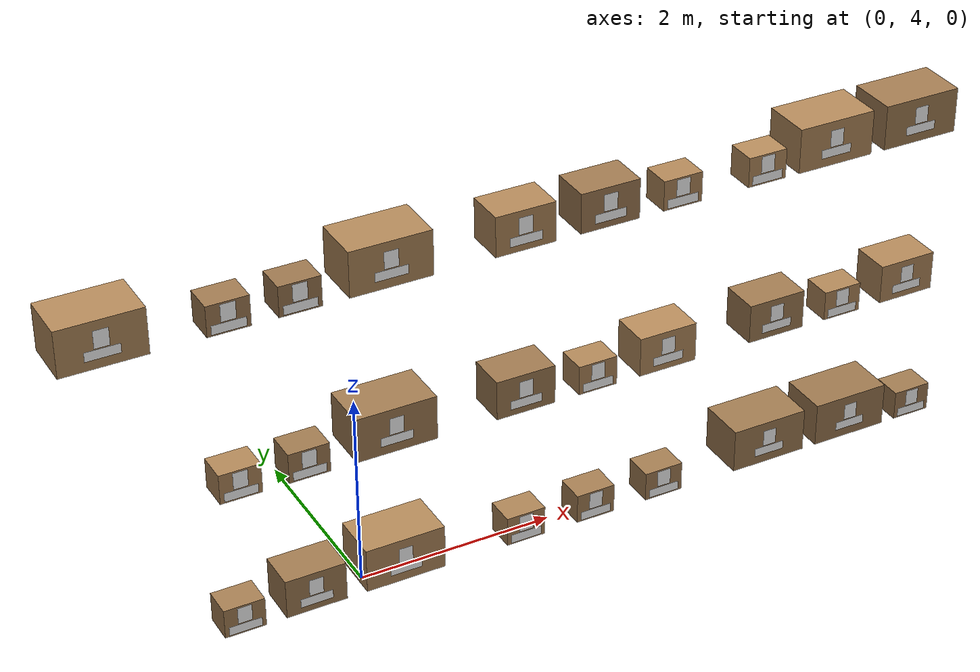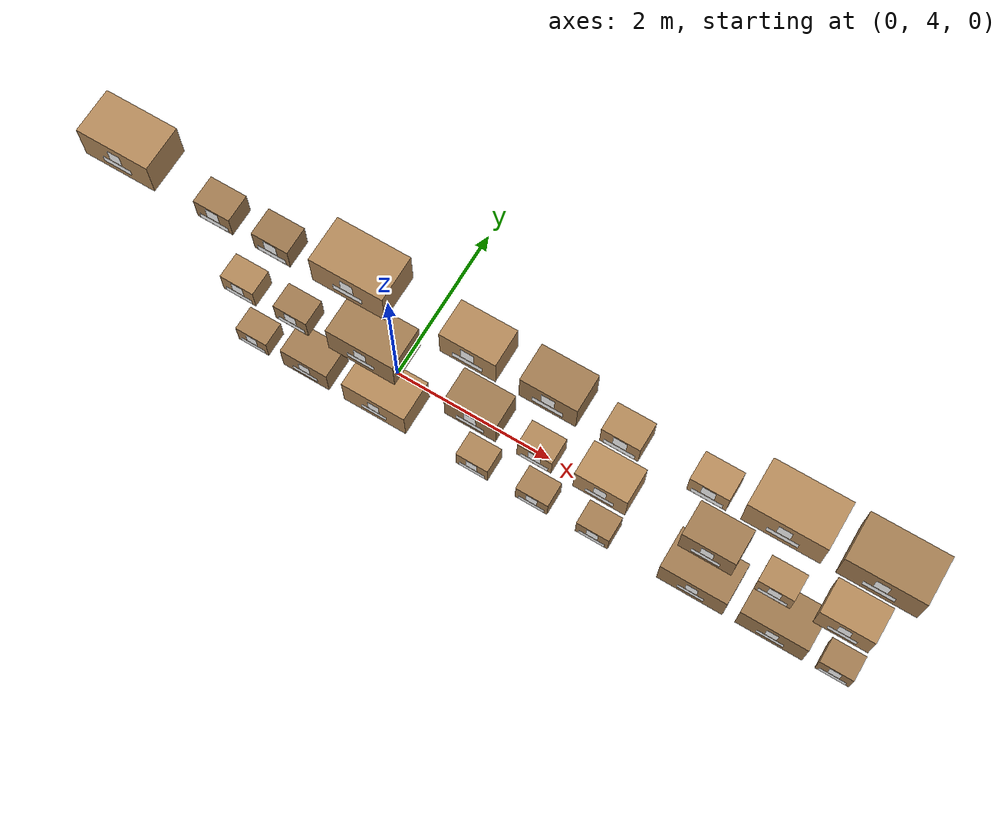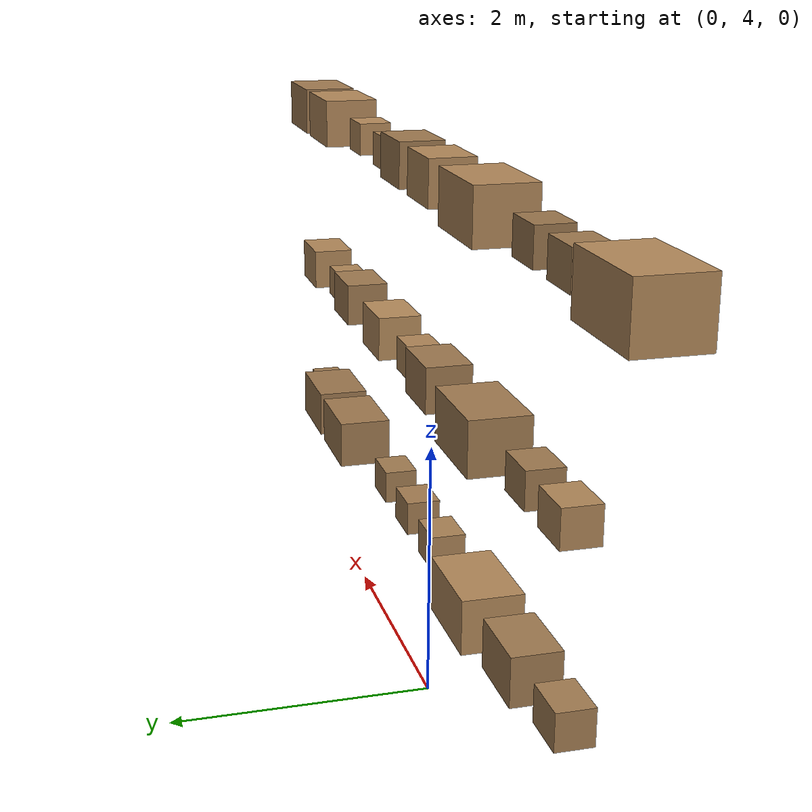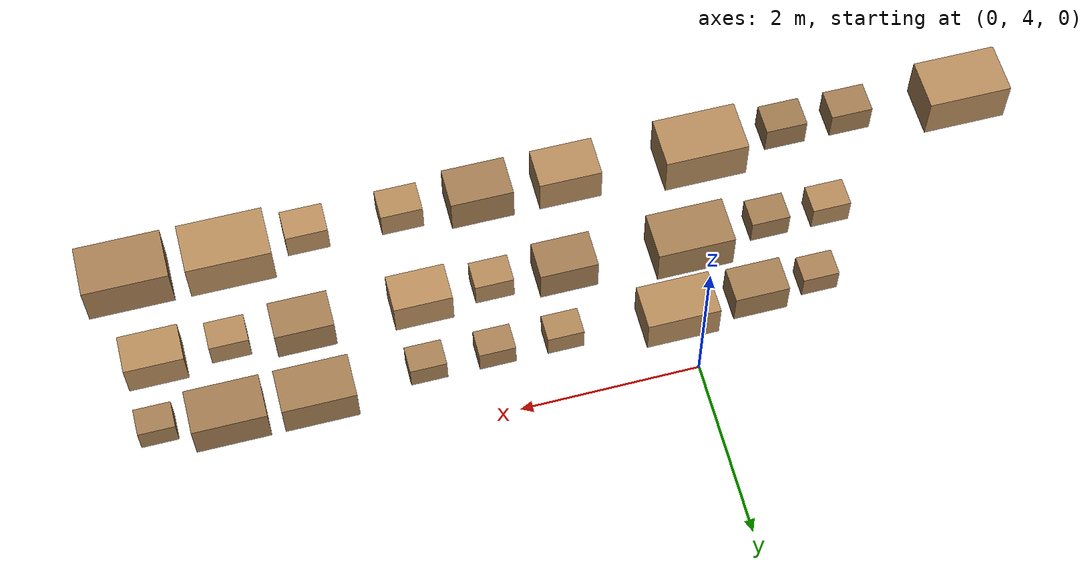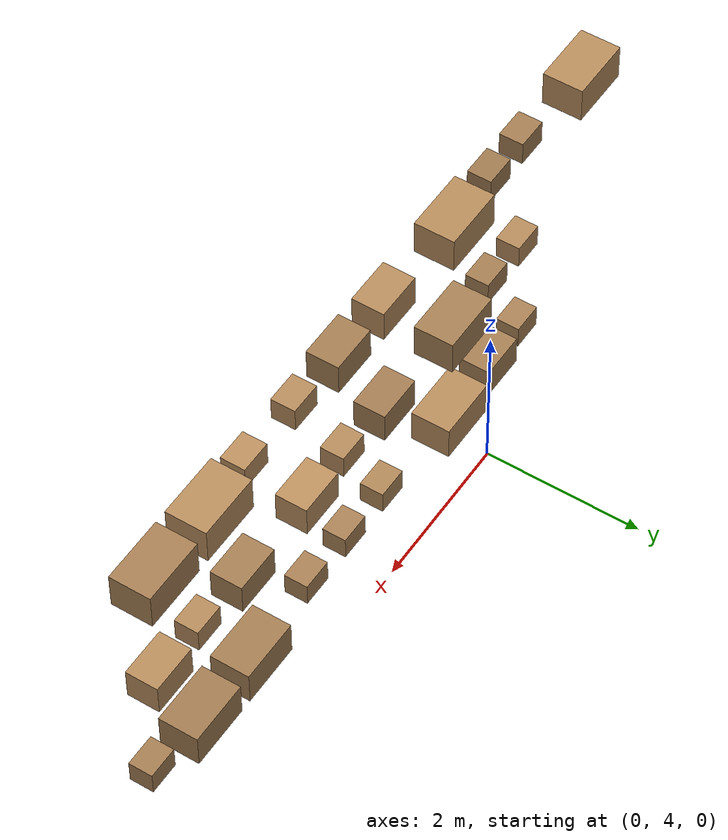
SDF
<sdf version="1.9">
 <world name="warehouse">
  <model name="inventory">
   <static>true</static>
   <link name="box_D_03_3_2">
    <visual name="body">
     <pose>-2.5 3.57 3.775 0 0 0</pose>
     <geometry><box><size>0.8 0.5 0.45</size></box></geometry>
     <material>
      <ambient>0.353038 0.26997 0.176519 1</ambient>
      <diffuse>0.706075 0.53994 0.353038 1</diffuse>
      <specular>0.05 0.05 0.05 1</specular>
      <pbr><metal><metalness>0.0</metalness><roughness>0.9</roughness></metal></pbr>
     </material>
    </visual>
    <collision name="body_c">
     <pose>-2.5 3.57 3.775 0 0 0</pose>
     <geometry><box><size>0.8 0.5 0.45</size></box></geometry>
    </collision>
    <visual name="label">
     <pose>-2.5 3.316 3.825 1.5708 0 0</pose>
     <geometry>
      <mesh><uri>model://warehouse_assets/meshes/label_quad.obj</uri><scale>0.14 0.17 1</scale></mesh>
     </geometry>
     <material>
      <ambient>1 1 1 1</ambient>
      <diffuse>1 1 1 1</diffuse>
      <specular>0 0 0 1</specular>
      <pbr>
       <metal>
        <albedo_map>model://warehouse_assets/materials/textures/box_D0332.png</albedo_map>
        <metalness>0.0</metalness>
        <roughness>1.0</roughness>
       </metal>
      </pbr>
     </material>
    </visual>
    <visual name="placard">
     <pose>-2.5 3.316 3.685 1.5708 0 0</pose>
     <geometry>
      <mesh><uri>model://warehouse_assets/meshes/label_quad.obj</uri><scale>0.32 0.09 1</scale></mesh>
     </geometry>
     <material>
      <ambient>1 1 1 1</ambient>
      <diffuse>1 1 1 1</diffuse>
      <specular>0 0 0 1</specular>
      <pbr>
       <metal>
        <albedo_map>model://warehouse_assets/materials/textures/placard_D0332.png</albedo_map>
        <metalness>0.0</metalness>
        <roughness>1.0</roughness>
       </metal>
      </pbr>
     </material>
    </visual>
   </link>
   <link name="box_D_04_1_0">
    <visual name="body">
     <pose>-1.45 3.47 0.55 0 0 0</pose>
     <geometry><box><size>0.4 0.3 0.3</size></box></geometry>
     <material>
      <ambient>0.323296 0.247226 0.161648 1</ambient>
      <diffuse>0.646591 0.494452 0.323296 1</diffuse>
      <specular>0.05 0.05 0.05 1</specular>
      <pbr><metal><metalness>0.0</metalness><roughness>0.9</roughness></metal></pbr>
     </material>
    </visual>
    <collision name="body_c">
     <pose>-1.45 3.47 0.55 0 0 0</pose>
     <geometry><box><size>0.4 0.3 0.3</size></box></geometry>
    </collision>
    <visual name="label">
     <pose>-1.45 3.316 0.6 1.5708 0 0</pose>
     <geometry>
      <mesh><uri>model://warehouse_assets/meshes/label_quad.obj</uri><scale>0.14 0.17 1</scale></mesh>
     </geometry>
     <material>
      <ambient>1 1 1 1</ambient>
      <diffuse>1 1 1 1</diffuse>
      <specular>0 0 0 1</specular>
      <pbr>
       <metal>
        <albedo_map>model://warehouse_assets/materials/textures/box_D0410.png</albedo_map>
        <metalness>0.0</metalness>
        <roughness>1.0</roughness>
       </metal>
      </pbr>
     </material>
    </visual>
    <visual name="placard">
     <pose>-1.45 3.316 0.46 1.5708 0 0</pose>
     <geometry>
      <mesh><uri>model://warehouse_assets/meshes/label_quad.obj</uri><scale>0.32 0.09 1</scale></mesh>
     </geometry>
     <material>
      <ambient>1 1 1 1</ambient>
      <diffuse>1 1 1 1</diffuse>
      <specular>0 0 0 1</specular>
      <pbr>
       <metal>
        <albedo_map>model://warehouse_assets/materials/textures/placard_D0410.png</albedo_map>
        <metalness>0.0</metalness>
        <roughness>1.0</roughness>
       </metal>
      </pbr>
     </material>
    </visual>
   </link>
   <link name="box_D_04_1_1">
    <visual name="body">
     <pose>-0.75 3.52 0.6 0 0 0</pose>
     <geometry><box><size>0.6 0.4 0.4</size></box></geometry>
     <material>
      <ambient>0.314243 0.240304 0.157122 1</ambient>
      <diffuse>0.628486 0.480607 0.314243 1</diffuse>
      <specular>0.05 0.05 0.05 1</specular>
      <pbr><metal><metalness>0.0</metalness><roughness>0.9</roughness></metal></pbr>
     </material>
    </visual>
    <collision name="body_c">
     <pose>-0.75 3.52 0.6 0 0 0</pose>
     <geometry><box><size>0.6 0.4 0.4</size></box></geometry>
    </collision>
    <visual name="label">
     <pose>-0.75 3.316 0.65 1.5708 0 0</pose>
     <geometry>
      <mesh><uri>model://warehouse_assets/meshes/label_quad.obj</uri><scale>0.14 0.17 1</scale></mesh>
     </geometry>
     <material>
      <ambient>1 1 1 1</ambient>
      <diffuse>1 1 1 1</diffuse>
      <specular>0 0 0 1</specular>
      <pbr>
       <metal>
        <albedo_map>model://warehouse_assets/materials/textures/box_D0411.png</albedo_map>
        <metalness>0.0</metalness>
        <roughness>1.0</roughness>
       </metal>
      </pbr>
     </material>
    </visual>
    <visual name="placard">
     <pose>-0.75 3.316 0.51 1.5708 0 0</pose>
     <geometry>
      <mesh><uri>model://warehouse_assets/meshes/label_quad.obj</uri><scale>0.32 0.09 1</scale></mesh>
     </geometry>
     <material>
      <ambient>1 1 1 1</ambient>
      <diffuse>1 1 1 1</diffuse>
      <specular>0 0 0 1</specular>
      <pbr>
       <metal>
        <albedo_map>model://warehouse_assets/materials/textures/placard_D0411.png</albedo_map>
        <metalness>0.0</metalness>
        <roughness>1.0</roughness>
       </metal>
      </pbr>
     </material>
    </visual>
   </link>
   <link name="box_D_04_1_2">
    <visual name="body">
     <pose>0.15 3.57 0.625 0 0 0</pose>
     <geometry><box><size>0.8 0.5 0.45</size></box></geometry>
     <material>
      <ambient>0.351765 0.268997 0.175882 1</ambient>
      <diffuse>0.70353 0.537993 0.351765 1</diffuse>
      <specular>0.05 0.05 0.05 1</specular>
      <pbr><metal><metalness>0.0</metalness><roughness>0.9</roughness></metal></pbr>
     </material>
    </visual>
    <collision name="body_c">
     <pose>0.15 3.57 0.625 0 0 0</pose>
     <geometry><box><size>0.8 0.5 0.45</size></box></geometry>
    </collision>
    <visual name="label">
     <pose>0.15 3.316 0.675 1.5708 0 0</pose>
     <geometry>
      <mesh><uri>model://warehouse_assets/meshes/label_quad.obj</uri><scale>0.14 0.17 1</scale></mesh>
     </geometry>
     <material>
      <ambient>1 1 1 1</ambient>
      <diffuse>1 1 1 1</diffuse>
      <specular>0 0 0 1</specular>
      <pbr>
       <metal>
        <albedo_map>model://warehouse_assets/materials/textures/box_D0412.png</albedo_map>
        <metalness>0.0</metalness>
        <roughness>1.0</roughness>
       </metal>
      </pbr>
     </material>
    </visual>
    <visual name="placard">
     <pose>0.15 3.316 0.535 1.5708 0 0</pose>
     <geometry>
      <mesh><uri>model://warehouse_assets/meshes/label_quad.obj</uri><scale>0.32 0.09 1</scale></mesh>
     </geometry>
     <material>
      <ambient>1 1 1 1</ambient>
      <diffuse>1 1 1 1</diffuse>
      <specular>0 0 0 1</specular>
      <pbr>
       <metal>
        <albedo_map>model://warehouse_assets/materials/textures/placard_D0412.png</albedo_map>
        <metalness>0.0</metalness>
        <roughness>1.0</roughness>
       </metal>
      </pbr>
     </material>
    </visual>
   </link>
   <link name="box_D_04_2_0">
    <visual name="body">
     <pose>-1.4 3.47 2 0 0 0</pose>
     <geometry><box><size>0.4 0.3 0.3</size></box></geometry>
     <material>
      <ambient>0.346204 0.264744 0.173102 1</ambient>
      <diffuse>0.692409 0.529489 0.346204 1</diffuse>
      <specular>0.05 0.05 0.05 1</specular>
      <pbr><metal><metalness>0.0</metalness><roughness>0.9</roughness></metal></pbr>
     </material>
    </visual>
    <collision name="body_c">
     <pose>-1.4 3.47 2 0 0 0</pose>
     <geometry><box><size>0.4 0.3 0.3</size></box></geometry>
    </collision>
    <visual name="label">
     <pose>-1.4 3.316 2.05 1.5708 0 0</pose>
     <geometry>
      <mesh><uri>model://warehouse_assets/meshes/label_quad.obj</uri><scale>0.14 0.17 1</scale></mesh>
     </geometry>
     <material>
      <ambient>1 1 1 1</ambient>
      <diffuse>1 1 1 1</diffuse>
      <specular>0 0 0 1</specular>
      <pbr>
       <metal>
        <albedo_map>model://warehouse_assets/materials/textures/box_D0420.png</albedo_map>
        <metalness>0.0</metalness>
        <roughness>1.0</roughness>
       </metal>
      </pbr>
     </material>
    </visual>
    <visual name="placard">
     <pose>-1.4 3.316 1.91 1.5708 0 0</pose>
     <geometry>
      <mesh><uri>model://warehouse_assets/meshes/label_quad.obj</uri><scale>0.32 0.09 1</scale></mesh>
     </geometry>
     <material>
      <ambient>1 1 1 1</ambient>
      <diffuse>1 1 1 1</diffuse>
      <specular>0 0 0 1</specular>
      <pbr>
       <metal>
        <albedo_map>model://warehouse_assets/materials/textures/placard_D0420.png</albedo_map>
        <metalness>0.0</metalness>
        <roughness>1.0</roughness>
       </metal>
      </pbr>
     </material>
    </visual>
   </link>
   <link name="box_D_04_2_1">
    <visual name="body">
     <pose>-0.75 3.47 2 0 0 0</pose>
     <geometry><box><size>0.4 0.3 0.3</size></box></geometry>
     <material>
      <ambient>0.311661 0.238329 0.155831 1</ambient>
      <diffuse>0.623323 0.476658 0.311661 1</diffuse>
      <specular>0.05 0.05 0.05 1</specular>
      <pbr><metal><metalness>0.0</metalness><roughness>0.9</roughness></metal></pbr>
     </material>
    </visual>
    <collision name="body_c">
     <pose>-0.75 3.47 2 0 0 0</pose>
     <geometry><box><size>0.4 0.3 0.3</size></box></geometry>
    </collision>
    <visual name="label">
     <pose>-0.75 3.316 2.05 1.5708 0 0</pose>
     <geometry>
      <mesh><uri>model://warehouse_assets/meshes/label_quad.obj</uri><scale>0.14 0.17 1</scale></mesh>
     </geometry>
     <material>
      <ambient>1 1 1 1</ambient>
      <diffuse>1 1 1 1</diffuse>
      <specular>0 0 0 1</specular>
      <pbr>
       <metal>
        <albedo_map>model://warehouse_assets/materials/textures/box_D0421.png</albedo_map>
        <metalness>0.0</metalness>
        <roughness>1.0</roughness>
       </metal>
      </pbr>
     </material>
    </visual>
    <visual name="placard">
     <pose>-0.75 3.316 1.91 1.5708 0 0</pose>
     <geometry>
      <mesh><uri>model://warehouse_assets/meshes/label_quad.obj</uri><scale>0.32 0.09 1</scale></mesh>
     </geometry>
     <material>
      <ambient>1 1 1 1</ambient>
      <diffuse>1 1 1 1</diffuse>
      <specular>0 0 0 1</specular>
      <pbr>
       <metal>
        <albedo_map>model://warehouse_assets/materials/textures/placard_D0421.png</albedo_map>
        <metalness>0.0</metalness>
        <roughness>1.0</roughness>
       </metal>
      </pbr>
     </material>
    </visual>
   </link>
   <link name="box_D_04_2_2">
    <visual name="body">
     <pose>0.1 3.57 2.075 0 0 0</pose>
     <geometry><box><size>0.8 0.5 0.45</size></box></geometry>
     <material>
      <ambient>0.317059 0.242457 0.15853 1</ambient>
      <diffuse>0.634119 0.484914 0.317059 1</diffuse>
      <specular>0.05 0.05 0.05 1</specular>
      <pbr><metal><metalness>0.0</metalness><roughness>0.9</roughness></metal></pbr>
     </material>
    </visual>
    <collision name="body_c">
     <pose>0.1 3.57 2.075 0 0 0</pose>
     <geometry><box><size>0.8 0.5 0.45</size></box></geometry>
    </collision>
    <visual name="label">
     <pose>0.1 3.316 2.125 1.5708 0 0</pose>
     <geometry>
      <mesh><uri>model://warehouse_assets/meshes/label_quad.obj</uri><scale>0.14 0.17 1</scale></mesh>
     </geometry>
     <material>
      <ambient>1 1 1 1</ambient>
      <diffuse>1 1 1 1</diffuse>
      <specular>0 0 0 1</specular>
      <pbr>
       <metal>
        <albedo_map>model://warehouse_assets/materials/textures/box_D0422.png</albedo_map>
        <metalness>0.0</metalness>
        <roughness>1.0</roughness>
       </metal>
      </pbr>
     </material>
    </visual>
    <visual name="placard">
     <pose>0.1 3.316 1.985 1.5708 0 0</pose>
     <geometry>
      <mesh><uri>model://warehouse_assets/meshes/label_quad.obj</uri><scale>0.32 0.09 1</scale></mesh>
     </geometry>
     <material>
      <ambient>1 1 1 1</ambient>
      <diffuse>1 1 1 1</diffuse>
      <specular>0 0 0 1</specular>
      <pbr>
       <metal>
        <albedo_map>model://warehouse_assets/materials/textures/placard_D0422.png</albedo_map>
        <metalness>0.0</metalness>
        <roughness>1.0</roughness>
       </metal>
      </pbr>
     </material>
    </visual>
   </link>
   <link name="box_D_04_3_0">
    <visual name="body">
     <pose>-1.4 3.47 3.7 0 0 0</pose>
     <geometry><box><size>0.4 0.3 0.3</size></box></geometry>
     <material>
      <ambient>0.313114 0.23944 0.156557 1</ambient>
      <diffuse>0.626227 0.47888 0.313114 1</diffuse>
      <specular>0.05 0.05 0.05 1</specular>
      <pbr><metal><metalness>0.0</metalness><roughness>0.9</roughness></metal></pbr>
     </material>
    </visual>
    <collision name="body_c">
     <pose>-1.4 3.47 3.7 0 0 0</pose>
     <geometry><box><size>0.4 0.3 0.3</size></box></geometry>
    </collision>
    <visual name="label">
     <pose>-1.4 3.316 3.75 1.5708 0 0</pose>
     <geometry>
      <mesh><uri>model://warehouse_assets/meshes/label_quad.obj</uri><scale>0.14 0.17 1</scale></mesh>
     </geometry>
     <material>
      <ambient>1 1 1 1</ambient>
      <diffuse>1 1 1 1</diffuse>
      <specular>0 0 0 1</specular>
      <pbr>
       <metal>
        <albedo_map>model://warehouse_assets/materials/textures/box_D0430.png</albedo_map>
        <metalness>0.0</metalness>
        <roughness>1.0</roughness>
       </metal>
      </pbr>
     </material>
    </visual>
    <visual name="placard">
     <pose>-1.4 3.316 3.61 1.5708 0 0</pose>
     <geometry>
      <mesh><uri>model://warehouse_assets/meshes/label_quad.obj</uri><scale>0.32 0.09 1</scale></mesh>
     </geometry>
     <material>
      <ambient>1 1 1 1</ambient>
      <diffuse>1 1 1 1</diffuse>
      <specular>0 0 0 1</specular>
      <pbr>
       <metal>
        <albedo_map>model://warehouse_assets/materials/textures/placard_D0430.png</albedo_map>
        <metalness>0.0</metalness>
        <roughness>1.0</roughness>
       </metal>
      </pbr>
     </material>
    </visual>
   </link>
   <link name="box_D_04_3_1">
    <visual name="body">
     <pose>-0.75 3.47 3.7 0 0 0</pose>
     <geometry><box><size>0.4 0.3 0.3</size></box></geometry>
     <material>
      <ambient>0.303092 0.231776 0.151546 1</ambient>
      <diffuse>0.606184 0.463553 0.303092 1</diffuse>
      <specular>0.05 0.05 0.05 1</specular>
      <pbr><metal><metalness>0.0</metalness><roughness>0.9</roughness></metal></pbr>
     </material>
    </visual>
    <collision name="body_c">
     <pose>-0.75 3.47 3.7 0 0 0</pose>
     <geometry><box><size>0.4 0.3 0.3</size></box></geometry>
    </collision>
    <visual name="label">
     <pose>-0.75 3.316 3.75 1.5708 0 0</pose>
     <geometry>
      <mesh><uri>model://warehouse_assets/meshes/label_quad.obj</uri><scale>0.14 0.17 1</scale></mesh>
     </geometry>
     <material>
      <ambient>1 1 1 1</ambient>
      <diffuse>1 1 1 1</diffuse>
      <specular>0 0 0 1</specular>
      <pbr>
       <metal>
        <albedo_map>model://warehouse_assets/materials/textures/box_D0431.png</albedo_map>
        <metalness>0.0</metalness>
        <roughness>1.0</roughness>
       </metal>
      </pbr>
     </material>
    </visual>
    <visual name="placard">
     <pose>-0.75 3.316 3.61 1.5708 0 0</pose>
     <geometry>
      <mesh><uri>model://warehouse_assets/meshes/label_quad.obj</uri><scale>0.32 0.09 1</scale></mesh>
     </geometry>
     <material>
      <ambient>1 1 1 1</ambient>
      <diffuse>1 1 1 1</diffuse>
      <specular>0 0 0 1</specular>
      <pbr>
       <metal>
        <albedo_map>model://warehouse_assets/materials/textures/placard_D0431.png</albedo_map>
        <metalness>0.0</metalness>
        <roughness>1.0</roughness>
       </metal>
      </pbr>
     </material>
    </visual>
   </link>
   <link name="box_D_04_3_2">
    <visual name="body">
     <pose>0.1 3.57 3.775 0 0 0</pose>
     <geometry><box><size>0.8 0.5 0.45</size></box></geometry>
     <material>
      <ambient>0.348665 0.266626 0.174333 1</ambient>
      <diffuse>0.69733 0.533253 0.348665 1</diffuse>
      <specular>0.05 0.05 0.05 1</specular>
      <pbr><metal><metalness>0.0</metalness><roughness>0.9</roughness></metal></pbr>
     </material>
    </visual>
    <collision name="body_c">
     <pose>0.1 3.57 3.775 0 0 0</pose>
     <geometry><box><size>0.8 0.5 0.45</size></box></geometry>
    </collision>
    <visual name="label">
     <pose>0.1 3.316 3.825 1.5708 0 0</pose>
     <geometry>
      <mesh><uri>model://warehouse_assets/meshes/label_quad.obj</uri><scale>0.14 0.17 1</scale></mesh>
     </geometry>
     <material>
      <ambient>1 1 1 1</ambient>
      <diffuse>1 1 1 1</diffuse>
      <specular>0 0 0 1</specular>
      <pbr>
       <metal>
        <albedo_map>model://warehouse_assets/materials/textures/box_D0432.png</albedo_map>
        <metalness>0.0</metalness>
        <roughness>1.0</roughness>
       </metal>
      </pbr>
     </material>
    </visual>
    <visual name="placard">
     <pose>0.1 3.316 3.685 1.5708 0 0</pose>
     <geometry>
      <mesh><uri>model://warehouse_assets/meshes/label_quad.obj</uri><scale>0.32 0.09 1</scale></mesh>
     </geometry>
     <material>
      <ambient>1 1 1 1</ambient>
      <diffuse>1 1 1 1</diffuse>
      <specular>0 0 0 1</specular>
      <pbr>
       <metal>
        <albedo_map>model://warehouse_assets/materials/textures/placard_D0432.png</albedo_map>
        <metalness>0.0</metalness>
        <roughness>1.0</roughness>
       </metal>
      </pbr>
     </material>
    </visual>
   </link>
   <link name="box_D_05_1_0">
    <visual name="body">
     <pose>1.4 3.47 0.55 0 0 0</pose>
     <geometry><box><size>0.4 0.3 0.3</size></box></geometry>
     <material>
      <ambient>0.337232 0.257883 0.168616 1</ambient>
      <diffuse>0.674464 0.515767 0.337232 1</diffuse>
      <specular>0.05 0.05 0.05 1</specular>
      <pbr><metal><metalness>0.0</metalness><roughness>0.9</roughness></metal></pbr>
     </material>
    </visual>
    <collision name="body_c">
     <pose>1.4 3.47 0.55 0 0 0</pose>
     <geometry><box><size>0.4 0.3 0.3</size></box></geometry>
    </collision>
    <visual name="label">
     <pose>1.4 3.316 0.6 1.5708 0 0</pose>
     <geometry>
      <mesh><uri>model://warehouse_assets/meshes/label_quad.obj</uri><scale>0.14 0.17 1</scale></mesh>
     </geometry>
     <material>
      <ambient>1 1 1 1</ambient>
      <diffuse>1 1 1 1</diffuse>
      <specular>0 0 0 1</specular>
      <pbr>
       <metal>
        <albedo_map>model://warehouse_assets/materials/textures/box_D0510.png</albedo_map>
        <metalness>0.0</metalness>
        <roughness>1.0</roughness>
       </metal>
      </pbr>
     </material>
    </visual>
    <visual name="placard">
     <pose>1.4 3.316 0.46 1.5708 0 0</pose>
     <geometry>
      <mesh><uri>model://warehouse_assets/meshes/label_quad.obj</uri><scale>0.32 0.09 1</scale></mesh>
     </geometry>
     <material>
      <ambient>1 1 1 1</ambient>
      <diffuse>1 1 1 1</diffuse>
      <specular>0 0 0 1</specular>
      <pbr>
       <metal>
        <albedo_map>model://warehouse_assets/materials/textures/placard_D0510.png</albedo_map>
        <metalness>0.0</metalness>
        <roughness>1.0</roughness>
       </metal>
      </pbr>
     </material>
    </visual>
   </link>
   <link name="box_D_05_1_1">
    <visual name="body">
     <pose>2.15 3.47 0.55 0 0 0</pose>
     <geometry><box><size>0.4 0.3 0.3</size></box></geometry>
     <material>
      <ambient>0.323574 0.247439 0.161787 1</ambient>
      <diffuse>0.647148 0.494878 0.323574 1</diffuse>
      <specular>0.05 0.05 0.05 1</specular>
      <pbr><metal><metalness>0.0</metalness><roughness>0.9</roughness></metal></pbr>
     </material>
    </visual>
    <collision name="body_c">
     <pose>2.15 3.47 0.55 0 0 0</pose>
     <geometry><box><size>0.4 0.3 0.3</size></box></geometry>
    </collision>
    <visual name="label">
     <pose>2.15 3.316 0.6 1.5708 0 0</pose>
     <geometry>
      <mesh><uri>model://warehouse_assets/meshes/label_quad.obj</uri><scale>0.14 0.17 1</scale></mesh>
     </geometry>
     <material>
      <ambient>1 1 1 1</ambient>
      <diffuse>1 1 1 1</diffuse>
      <specular>0 0 0 1</specular>
      <pbr>
       <metal>
        <albedo_map>model://warehouse_assets/materials/textures/box_D0511.png</albedo_map>
        <metalness>0.0</metalness>
        <roughness>1.0</roughness>
       </metal>
      </pbr>
     </material>
    </visual>
    <visual name="placard">
     <pose>2.15 3.316 0.46 1.5708 0 0</pose>
     <geometry>
      <mesh><uri>model://warehouse_assets/meshes/label_quad.obj</uri><scale>0.32 0.09 1</scale></mesh>
     </geometry>
     <material>
      <ambient>1 1 1 1</ambient>
      <diffuse>1 1 1 1</diffuse>
      <specular>0 0 0 1</specular>
      <pbr>
       <metal>
        <albedo_map>model://warehouse_assets/materials/textures/placard_D0511.png</albedo_map>
        <metalness>0.0</metalness>
        <roughness>1.0</roughness>
       </metal>
      </pbr>
     </material>
    </visual>
   </link>
   <link name="box_D_05_1_2">
    <visual name="body">
     <pose>2.9 3.47 0.55 0 0 0</pose>
     <geometry><box><size>0.4 0.3 0.3</size></box></geometry>
     <material>
      <ambient>0.320671 0.245219 0.160335 1</ambient>
      <diffuse>0.641341 0.490438 0.320671 1</diffuse>
      <specular>0.05 0.05 0.05 1</specular>
      <pbr><metal><metalness>0.0</metalness><roughness>0.9</roughness></metal></pbr>
     </material>
    </visual>
    <collision name="body_c">
     <pose>2.9 3.47 0.55 0 0 0</pose>
     <geometry><box><size>0.4 0.3 0.3</size></box></geometry>
    </collision>
    <visual name="label">
     <pose>2.9 3.316 0.6 1.5708 0 0</pose>
     <geometry>
      <mesh><uri>model://warehouse_assets/meshes/label_quad.obj</uri><scale>0.14 0.17 1</scale></mesh>
     </geometry>
     <material>
      <ambient>1 1 1 1</ambient>
      <diffuse>1 1 1 1</diffuse>
      <specular>0 0 0 1</specular>
      <pbr>
       <metal>
        <albedo_map>model://warehouse_assets/materials/textures/box_D0512.png</albedo_map>
        <metalness>0.0</metalness>
        <roughness>1.0</roughness>
       </metal>
      </pbr>
     </material>
    </visual>
    <visual name="placard">
     <pose>2.9 3.316 0.46 1.5708 0 0</pose>
     <geometry>
      <mesh><uri>model://warehouse_assets/meshes/label_quad.obj</uri><scale>0.32 0.09 1</scale></mesh>
     </geometry>
     <material>
      <ambient>1 1 1 1</ambient>
      <diffuse>1 1 1 1</diffuse>
      <specular>0 0 0 1</specular>
      <pbr>
       <metal>
        <albedo_map>model://warehouse_assets/materials/textures/placard_D0512.png</albedo_map>
        <metalness>0.0</metalness>
        <roughness>1.0</roughness>
       </metal>
      </pbr>
     </material>
    </visual>
   </link>
   <link name="box_D_05_2_0">
    <visual name="body">
     <pose>1.4 3.52 2.05 0 0 0</pose>
     <geometry><box><size>0.6 0.4 0.4</size></box></geometry>
     <material>
      <ambient>0.310272 0.237267 0.155136 1</ambient>
      <diffuse>0.620543 0.474533 0.310272 1</diffuse>
      <specular>0.05 0.05 0.05 1</specular>
      <pbr><metal><metalness>0.0</metalness><roughness>0.9</roughness></metal></pbr>
     </material>
    </visual>
    <collision name="body_c">
     <pose>1.4 3.52 2.05 0 0 0</pose>
     <geometry><box><size>0.6 0.4 0.4</size></box></geometry>
    </collision>
    <visual name="label">
     <pose>1.4 3.316 2.1 1.5708 0 0</pose>
     <geometry>
      <mesh><uri>model://warehouse_assets/meshes/label_quad.obj</uri><scale>0.14 0.17 1</scale></mesh>
     </geometry>
     <material>
      <ambient>1 1 1 1</ambient>
      <diffuse>1 1 1 1</diffuse>
      <specular>0 0 0 1</specular>
      <pbr>
       <metal>
        <albedo_map>model://warehouse_assets/materials/textures/box_D0520.png</albedo_map>
        <metalness>0.0</metalness>
        <roughness>1.0</roughness>
       </metal>
      </pbr>
     </material>
    </visual>
    <visual name="placard">
     <pose>1.4 3.316 1.96 1.5708 0 0</pose>
     <geometry>
      <mesh><uri>model://warehouse_assets/meshes/label_quad.obj</uri><scale>0.32 0.09 1</scale></mesh>
     </geometry>
     <material>
      <ambient>1 1 1 1</ambient>
      <diffuse>1 1 1 1</diffuse>
      <specular>0 0 0 1</specular>
      <pbr>
       <metal>
        <albedo_map>model://warehouse_assets/materials/textures/placard_D0520.png</albedo_map>
        <metalness>0.0</metalness>
        <roughness>1.0</roughness>
       </metal>
      </pbr>
     </material>
    </visual>
   </link>
   <link name="box_D_05_2_1">
    <visual name="body">
     <pose>2.15 3.47 2 0 0 0</pose>
     <geometry><box><size>0.4 0.3 0.3</size></box></geometry>
     <material>
      <ambient>0.345722 0.264376 0.172861 1</ambient>
      <diffuse>0.691445 0.528752 0.345722 1</diffuse>
      <specular>0.05 0.05 0.05 1</specular>
      <pbr><metal><metalness>0.0</metalness><roughness>0.9</roughness></metal></pbr>
     </material>
    </visual>
    <collision name="body_c">
     <pose>2.15 3.47 2 0 0 0</pose>
     <geometry><box><size>0.4 0.3 0.3</size></box></geometry>
    </collision>
    <visual name="label">
     <pose>2.15 3.316 2.05 1.5708 0 0</pose>
     <geometry>
      <mesh><uri>model://warehouse_assets/meshes/label_quad.obj</uri><scale>0.14 0.17 1</scale></mesh>
     </geometry>
     <material>
      <ambient>1 1 1 1</ambient>
      <diffuse>1 1 1 1</diffuse>
      <specular>0 0 0 1</specular>
      <pbr>
       <metal>
        <albedo_map>model://warehouse_assets/materials/textures/box_D0521.png</albedo_map>
        <metalness>0.0</metalness>
        <roughness>1.0</roughness>
       </metal>
      </pbr>
     </material>
    </visual>
    <visual name="placard">
     <pose>2.15 3.316 1.91 1.5708 0 0</pose>
     <geometry>
      <mesh><uri>model://warehouse_assets/meshes/label_quad.obj</uri><scale>0.32 0.09 1</scale></mesh>
     </geometry>
     <material>
      <ambient>1 1 1 1</ambient>
      <diffuse>1 1 1 1</diffuse>
      <specular>0 0 0 1</specular>
      <pbr>
       <metal>
        <albedo_map>model://warehouse_assets/materials/textures/placard_D0521.png</albedo_map>
        <metalness>0.0</metalness>
        <roughness>1.0</roughness>
       </metal>
      </pbr>
     </material>
    </visual>
   </link>
   <link name="box_D_05_2_2">
    <visual name="body">
     <pose>2.9 3.52 2.05 0 0 0</pose>
     <geometry><box><size>0.6 0.4 0.4</size></box></geometry>
     <material>
      <ambient>0.35978 0.275126 0.17989 1</ambient>
      <diffuse>0.71956 0.550252 0.35978 1</diffuse>
      <specular>0.05 0.05 0.05 1</specular>
      <pbr><metal><metalness>0.0</metalness><roughness>0.9</roughness></metal></pbr>
     </material>
    </visual>
    <collision name="body_c">
     <pose>2.9 3.52 2.05 0 0 0</pose>
     <geometry><box><size>0.6 0.4 0.4</size></box></geometry>
    </collision>
    <visual name="label">
     <pose>2.9 3.316 2.1 1.5708 0 0</pose>
     <geometry>
      <mesh><uri>model://warehouse_assets/meshes/label_quad.obj</uri><scale>0.14 0.17 1</scale></mesh>
     </geometry>
     <material>
      <ambient>1 1 1 1</ambient>
      <diffuse>1 1 1 1</diffuse>
      <specular>0 0 0 1</specular>
      <pbr>
       <metal>
        <albedo_map>model://warehouse_assets/materials/textures/box_D0522.png</albedo_map>
        <metalness>0.0</metalness>
        <roughness>1.0</roughness>
       </metal>
      </pbr>
     </material>
    </visual>
    <visual name="placard">
     <pose>2.9 3.316 1.96 1.5708 0 0</pose>
     <geometry>
      <mesh><uri>model://warehouse_assets/meshes/label_quad.obj</uri><scale>0.32 0.09 1</scale></mesh>
     </geometry>
     <material>
      <ambient>1 1 1 1</ambient>
      <diffuse>1 1 1 1</diffuse>
      <specular>0 0 0 1</specular>
      <pbr>
       <metal>
        <albedo_map>model://warehouse_assets/materials/textures/placard_D0522.png</albedo_map>
        <metalness>0.0</metalness>
        <roughness>1.0</roughness>
       </metal>
      </pbr>
     </material>
    </visual>
   </link>
   <link name="box_D_05_3_0">
    <visual name="body">
     <pose>1.4 3.52 3.75 0 0 0</pose>
     <geometry><box><size>0.6 0.4 0.4</size></box></geometry>
     <material>
      <ambient>0.350422 0.26797 0.175211 1</ambient>
      <diffuse>0.700845 0.53594 0.350422 1</diffuse>
      <specular>0.05 0.05 0.05 1</specular>
      <pbr><metal><metalness>0.0</metalness><roughness>0.9</roughness></metal></pbr>
     </material>
    </visual>
    <collision name="body_c">
     <pose>1.4 3.52 3.75 0 0 0</pose>
     <geometry><box><size>0.6 0.4 0.4</size></box></geometry>
    </collision>
    <visual name="label">
     <pose>1.4 3.316 3.8 1.5708 0 0</pose>
     <geometry>
      <mesh><uri>model://warehouse_assets/meshes/label_quad.obj</uri><scale>0.14 0.17 1</scale></mesh>
     </geometry>
     <material>
      <ambient>1 1 1 1</ambient>
      <diffuse>1 1 1 1</diffuse>
      <specular>0 0 0 1</specular>
      <pbr>
       <metal>
        <albedo_map>model://warehouse_assets/materials/textures/box_D0530.png</albedo_map>
        <metalness>0.0</metalness>
        <roughness>1.0</roughness>
       </metal>
      </pbr>
     </material>
    </visual>
    <visual name="placard">
     <pose>1.4 3.316 3.66 1.5708 0 0</pose>
     <geometry>
      <mesh><uri>model://warehouse_assets/meshes/label_quad.obj</uri><scale>0.32 0.09 1</scale></mesh>
     </geometry>
     <material>
      <ambient>1 1 1 1</ambient>
      <diffuse>1 1 1 1</diffuse>
      <specular>0 0 0 1</specular>
      <pbr>
       <metal>
        <albedo_map>model://warehouse_assets/materials/textures/placard_D0530.png</albedo_map>
        <metalness>0.0</metalness>
        <roughness>1.0</roughness>
       </metal>
      </pbr>
     </material>
    </visual>
   </link>
   <link name="box_D_05_3_1">
    <visual name="body">
     <pose>2.25 3.52 3.75 0 0 0</pose>
     <geometry><box><size>0.6 0.4 0.4</size></box></geometry>
     <material>
      <ambient>0.313107 0.239435 0.156554 1</ambient>
      <diffuse>0.626215 0.47887 0.313107 1</diffuse>
      <specular>0.05 0.05 0.05 1</specular>
      <pbr><metal><metalness>0.0</metalness><roughness>0.9</roughness></metal></pbr>
     </material>
    </visual>
    <collision name="body_c">
     <pose>2.25 3.52 3.75 0 0 0</pose>
     <geometry><box><size>0.6 0.4 0.4</size></box></geometry>
    </collision>
    <visual name="label">
     <pose>2.25 3.316 3.8 1.5708 0 0</pose>
     <geometry>
      <mesh><uri>model://warehouse_assets/meshes/label_quad.obj</uri><scale>0.14 0.17 1</scale></mesh>
     </geometry>
     <material>
      <ambient>1 1 1 1</ambient>
      <diffuse>1 1 1 1</diffuse>
      <specular>0 0 0 1</specular>
      <pbr>
       <metal>
        <albedo_map>model://warehouse_assets/materials/textures/box_D0531.png</albedo_map>
        <metalness>0.0</metalness>
        <roughness>1.0</roughness>
       </metal>
      </pbr>
     </material>
    </visual>
    <visual name="placard">
     <pose>2.25 3.316 3.66 1.5708 0 0</pose>
     <geometry>
      <mesh><uri>model://warehouse_assets/meshes/label_quad.obj</uri><scale>0.32 0.09 1</scale></mesh>
     </geometry>
     <material>
      <ambient>1 1 1 1</ambient>
      <diffuse>1 1 1 1</diffuse>
      <specular>0 0 0 1</specular>
      <pbr>
       <metal>
        <albedo_map>model://warehouse_assets/materials/textures/placard_D0531.png</albedo_map>
        <metalness>0.0</metalness>
        <roughness>1.0</roughness>
       </metal>
      </pbr>
     </material>
    </visual>
   </link>
   <link name="box_D_05_3_2">
    <visual name="body">
     <pose>3 3.47 3.7 0 0 0</pose>
     <geometry><box><size>0.4 0.3 0.3</size></box></geometry>
     <material>
      <ambient>0.347934 0.266067 0.173967 1</ambient>
      <diffuse>0.695868 0.532134 0.347934 1</diffuse>
      <specular>0.05 0.05 0.05 1</specular>
      <pbr><metal><metalness>0.0</metalness><roughness>0.9</roughness></metal></pbr>
     </material>
    </visual>
    <collision name="body_c">
     <pose>3 3.47 3.7 0 0 0</pose>
     <geometry><box><size>0.4 0.3 0.3</size></box></geometry>
    </collision>
    <visual name="label">
     <pose>3 3.316 3.75 1.5708 0 0</pose>
     <geometry>
      <mesh><uri>model://warehouse_assets/meshes/label_quad.obj</uri><scale>0.14 0.17 1</scale></mesh>
     </geometry>
     <material>
      <ambient>1 1 1 1</ambient>
      <diffuse>1 1 1 1</diffuse>
      <specular>0 0 0 1</specular>
      <pbr>
       <metal>
        <albedo_map>model://warehouse_assets/materials/textures/box_D0532.png</albedo_map>
        <metalness>0.0</metalness>
        <roughness>1.0</roughness>
       </metal>
      </pbr>
     </material>
    </visual>
    <visual name="placard">
     <pose>3 3.316 3.61 1.5708 0 0</pose>
     <geometry>
      <mesh><uri>model://warehouse_assets/meshes/label_quad.obj</uri><scale>0.32 0.09 1</scale></mesh>
     </geometry>
     <material>
      <ambient>1 1 1 1</ambient>
      <diffuse>1 1 1 1</diffuse>
      <specular>0 0 0 1</specular>
      <pbr>
       <metal>
        <albedo_map>model://warehouse_assets/materials/textures/placard_D0532.png</albedo_map>
        <metalness>0.0</metalness>
        <roughness>1.0</roughness>
       </metal>
      </pbr>
     </material>
    </visual>
   </link>
   <link name="box_D_06_1_0">
    <visual name="body">
     <pose>4.1 3.57 0.625 0 0 0</pose>
     <geometry><box><size>0.8 0.5 0.45</size></box></geometry>
     <material>
      <ambient>0.313645 0.239846 0.156822 1</ambient>
      <diffuse>0.62729 0.479692 0.313645 1</diffuse>
      <specular>0.05 0.05 0.05 1</specular>
      <pbr><metal><metalness>0.0</metalness><roughness>0.9</roughness></metal></pbr>
     </material>
    </visual>
    <collision name="body_c">
     <pose>4.1 3.57 0.625 0 0 0</pose>
     <geometry><box><size>0.8 0.5 0.45</size></box></geometry>
    </collision>
    <visual name="label">
     <pose>4.1 3.316 0.675 1.5708 0 0</pose>
     <geometry>
      <mesh><uri>model://warehouse_assets/meshes/label_quad.obj</uri><scale>0.14 0.17 1</scale></mesh>
     </geometry>
     <material>
      <ambient>1 1 1 1</ambient>
      <diffuse>1 1 1 1</diffuse>
      <specular>0 0 0 1</specular>
      <pbr>
       <metal>
        <albedo_map>model://warehouse_assets/materials/textures/box_D0610.png</albedo_map>
        <metalness>0.0</metalness>
        <roughness>1.0</roughness>
       </metal>
      </pbr>
     </material>
    </visual>
    <visual name="placard">
     <pose>4.1 3.316 0.535 1.5708 0 0</pose>
     <geometry>
      <mesh><uri>model://warehouse_assets/meshes/label_quad.obj</uri><scale>0.32 0.09 1</scale></mesh>
     </geometry>
     <material>
      <ambient>1 1 1 1</ambient>
      <diffuse>1 1 1 1</diffuse>
      <specular>0 0 0 1</specular>
      <pbr>
       <metal>
        <albedo_map>model://warehouse_assets/materials/textures/placard_D0610.png</albedo_map>
        <metalness>0.0</metalness>
        <roughness>1.0</roughness>
       </metal>
      </pbr>
     </material>
    </visual>
   </link>
   <link name="box_D_06_1_1">
    <visual name="body">
     <pose>5.05 3.57 0.625 0 0 0</pose>
     <geometry><box><size>0.8 0.5 0.45</size></box></geometry>
     <material>
      <ambient>0.307183 0.234904 0.153591 1</ambient>
      <diffuse>0.614365 0.469809 0.307183 1</diffuse>
      <specular>0.05 0.05 0.05 1</specular>
      <pbr><metal><metalness>0.0</metalness><roughness>0.9</roughness></metal></pbr>
     </material>
    </visual>
    <collision name="body_c">
     <pose>5.05 3.57 0.625 0 0 0</pose>
     <geometry><box><size>0.8 0.5 0.45</size></box></geometry>
    </collision>
    <visual name="label">
     <pose>5.05 3.316 0.675 1.5708 0 0</pose>
     <geometry>
      <mesh><uri>model://warehouse_assets/meshes/label_quad.obj</uri><scale>0.14 0.17 1</scale></mesh>
     </geometry>
     <material>
      <ambient>1 1 1 1</ambient>
      <diffuse>1 1 1 1</diffuse>
      <specular>0 0 0 1</specular>
      <pbr>
       <metal>
        <albedo_map>model://warehouse_assets/materials/textures/box_D0611.png</albedo_map>
        <metalness>0.0</metalness>
        <roughness>1.0</roughness>
       </metal>
      </pbr>
     </material>
    </visual>
    <visual name="placard">
     <pose>5.05 3.316 0.535 1.5708 0 0</pose>
     <geometry>
      <mesh><uri>model://warehouse_assets/meshes/label_quad.obj</uri><scale>0.32 0.09 1</scale></mesh>
     </geometry>
     <material>
      <ambient>1 1 1 1</ambient>
      <diffuse>1 1 1 1</diffuse>
      <specular>0 0 0 1</specular>
      <pbr>
       <metal>
        <albedo_map>model://warehouse_assets/materials/textures/placard_D0611.png</albedo_map>
        <metalness>0.0</metalness>
        <roughness>1.0</roughness>
       </metal>
      </pbr>
     </material>
    </visual>
   </link>
   <link name="box_D_06_1_2">
    <visual name="body">
     <pose>5.8 3.47 0.55 0 0 0</pose>
     <geometry><box><size>0.4 0.3 0.3</size></box></geometry>
     <material>
      <ambient>0.313247 0.239542 0.156623 1</ambient>
      <diffuse>0.626494 0.479083 0.313247 1</diffuse>
      <specular>0.05 0.05 0.05 1</specular>
      <pbr><metal><metalness>0.0</metalness><roughness>0.9</roughness></metal></pbr>
     </material>
    </visual>
    <collision name="body_c">
     <pose>5.8 3.47 0.55 0 0 0</pose>
     <geometry><box><size>0.4 0.3 0.3</size></box></geometry>
    </collision>
    <visual name="label">
     <pose>5.8 3.316 0.6 1.5708 0 0</pose>
     <geometry>
      <mesh><uri>model://warehouse_assets/meshes/label_quad.obj</uri><scale>0.14 0.17 1</scale></mesh>
     </geometry>
     <material>
      <ambient>1 1 1 1</ambient>
      <diffuse>1 1 1 1</diffuse>
      <specular>0 0 0 1</specular>
      <pbr>
       <metal>
        <albedo_map>model://warehouse_assets/materials/textures/box_D0612.png</albedo_map>
        <metalness>0.0</metalness>
        <roughness>1.0</roughness>
       </metal>
      </pbr>
     </material>
    </visual>
    <visual name="placard">
     <pose>5.8 3.316 0.46 1.5708 0 0</pose>
     <geometry>
      <mesh><uri>model://warehouse_assets/meshes/label_quad.obj</uri><scale>0.32 0.09 1</scale></mesh>
     </geometry>
     <material>
      <ambient>1 1 1 1</ambient>
      <diffuse>1 1 1 1</diffuse>
      <specular>0 0 0 1</specular>
      <pbr>
       <metal>
        <albedo_map>model://warehouse_assets/materials/textures/placard_D0612.png</albedo_map>
        <metalness>0.0</metalness>
        <roughness>1.0</roughness>
       </metal>
      </pbr>
     </material>
    </visual>
   </link>
   <link name="box_D_06_2_0">
    <visual name="body">
     <pose>4.1 3.52 2.05 0 0 0</pose>
     <geometry><box><size>0.6 0.4 0.4</size></box></geometry>
     <material>
      <ambient>0.314711 0.240661 0.157355 1</ambient>
      <diffuse>0.629422 0.481323 0.314711 1</diffuse>
      <specular>0.05 0.05 0.05 1</specular>
      <pbr><metal><metalness>0.0</metalness><roughness>0.9</roughness></metal></pbr>
     </material>
    </visual>
    <collision name="body_c">
     <pose>4.1 3.52 2.05 0 0 0</pose>
     <geometry><box><size>0.6 0.4 0.4</size></box></geometry>
    </collision>
    <visual name="label">
     <pose>4.1 3.316 2.1 1.5708 0 0</pose>
     <geometry>
      <mesh><uri>model://warehouse_assets/meshes/label_quad.obj</uri><scale>0.14 0.17 1</scale></mesh>
     </geometry>
     <material>
      <ambient>1 1 1 1</ambient>
      <diffuse>1 1 1 1</diffuse>
      <specular>0 0 0 1</specular>
      <pbr>
       <metal>
        <albedo_map>model://warehouse_assets/materials/textures/box_D0620.png</albedo_map>
        <metalness>0.0</metalness>
        <roughness>1.0</roughness>
       </metal>
      </pbr>
     </material>
    </visual>
    <visual name="placard">
     <pose>4.1 3.316 1.96 1.5708 0 0</pose>
     <geometry>
      <mesh><uri>model://warehouse_assets/meshes/label_quad.obj</uri><scale>0.32 0.09 1</scale></mesh>
     </geometry>
     <material>
      <ambient>1 1 1 1</ambient>
      <diffuse>1 1 1 1</diffuse>
      <specular>0 0 0 1</specular>
      <pbr>
       <metal>
        <albedo_map>model://warehouse_assets/materials/textures/placard_D0620.png</albedo_map>
        <metalness>0.0</metalness>
        <roughness>1.0</roughness>
       </metal>
      </pbr>
     </material>
    </visual>
   </link>
   <link name="box_D_06_2_1">
    <visual name="body">
     <pose>4.85 3.47 2 0 0 0</pose>
     <geometry><box><size>0.4 0.3 0.3</size></box></geometry>
     <material>
      <ambient>0.346225 0.26476 0.173112 1</ambient>
      <diffuse>0.692449 0.52952 0.346225 1</diffuse>
      <specular>0.05 0.05 0.05 1</specular>
      <pbr><metal><metalness>0.0</metalness><roughness>0.9</roughness></metal></pbr>
     </material>
    </visual>
    <collision name="body_c">
     <pose>4.85 3.47 2 0 0 0</pose>
     <geometry><box><size>0.4 0.3 0.3</size></box></geometry>
    </collision>
    <visual name="label">
     <pose>4.85 3.316 2.05 1.5708 0 0</pose>
     <geometry>
      <mesh><uri>model://warehouse_assets/meshes/label_quad.obj</uri><scale>0.14 0.17 1</scale></mesh>
     </geometry>
     <material>
      <ambient>1 1 1 1</ambient>
      <diffuse>1 1 1 1</diffuse>
      <specular>0 0 0 1</specular>
      <pbr>
       <metal>
        <albedo_map>model://warehouse_assets/materials/textures/box_D0621.png</albedo_map>
        <metalness>0.0</metalness>
        <roughness>1.0</roughness>
       </metal>
      </pbr>
     </material>
    </visual>
    <visual name="placard">
     <pose>4.85 3.316 1.91 1.5708 0 0</pose>
     <geometry>
      <mesh><uri>model://warehouse_assets/meshes/label_quad.obj</uri><scale>0.32 0.09 1</scale></mesh>
     </geometry>
     <material>
      <ambient>1 1 1 1</ambient>
      <diffuse>1 1 1 1</diffuse>
      <specular>0 0 0 1</specular>
      <pbr>
       <metal>
        <albedo_map>model://warehouse_assets/materials/textures/placard_D0621.png</albedo_map>
        <metalness>0.0</metalness>
        <roughness>1.0</roughness>
       </metal>
      </pbr>
     </material>
    </visual>
   </link>
   <link name="box_D_06_2_2">
    <visual name="body">
     <pose>5.6 3.52 2.05 0 0 0</pose>
     <geometry><box><size>0.6 0.4 0.4</size></box></geometry>
     <material>
      <ambient>0.351407 0.268723 0.175704 1</ambient>
      <diffuse>0.702814 0.537446 0.351407 1</diffuse>
      <specular>0.05 0.05 0.05 1</specular>
      <pbr><metal><metalness>0.0</metalness><roughness>0.9</roughness></metal></pbr>
     </material>
    </visual>
    <collision name="body_c">
     <pose>5.6 3.52 2.05 0 0 0</pose>
     <geometry><box><size>0.6 0.4 0.4</size></box></geometry>
    </collision>
    <visual name="label">
     <pose>5.6 3.316 2.1 1.5708 0 0</pose>
     <geometry>
      <mesh><uri>model://warehouse_assets/meshes/label_quad.obj</uri><scale>0.14 0.17 1</scale></mesh>
     </geometry>
     <material>
      <ambient>1 1 1 1</ambient>
      <diffuse>1 1 1 1</diffuse>
      <specular>0 0 0 1</specular>
      <pbr>
       <metal>
        <albedo_map>model://warehouse_assets/materials/textures/box_D0622.png</albedo_map>
        <metalness>0.0</metalness>
        <roughness>1.0</roughness>
       </metal>
      </pbr>
     </material>
    </visual>
    <visual name="placard">
     <pose>5.6 3.316 1.96 1.5708 0 0</pose>
     <geometry>
      <mesh><uri>model://warehouse_assets/meshes/label_quad.obj</uri><scale>0.32 0.09 1</scale></mesh>
     </geometry>
     <material>
      <ambient>1 1 1 1</ambient>
      <diffuse>1 1 1 1</diffuse>
      <specular>0 0 0 1</specular>
      <pbr>
       <metal>
        <albedo_map>model://warehouse_assets/materials/textures/placard_D0622.png</albedo_map>
        <metalness>0.0</metalness>
        <roughness>1.0</roughness>
       </metal>
      </pbr>
     </material>
    </visual>
   </link>
   <link name="box_D_06_3_0">
    <visual name="body">
     <pose>3.9 3.47 3.7 0 0 0</pose>
     <geometry><box><size>0.4 0.3 0.3</size></box></geometry>
     <material>
      <ambient>0.35873 0.274323 0.179365 1</ambient>
      <diffuse>0.717459 0.548645 0.35873 1</diffuse>
      <specular>0.05 0.05 0.05 1</specular>
      <pbr><metal><metalness>0.0</metalness><roughness>0.9</roughness></metal></pbr>
     </material>
    </visual>
    <collision name="body_c">
     <pose>3.9 3.47 3.7 0 0 0</pose>
     <geometry><box><size>0.4 0.3 0.3</size></box></geometry>
    </collision>
    <visual name="label">
     <pose>3.9 3.316 3.75 1.5708 0 0</pose>
     <geometry>
      <mesh><uri>model://warehouse_assets/meshes/label_quad.obj</uri><scale>0.14 0.17 1</scale></mesh>
     </geometry>
     <material>
      <ambient>1 1 1 1</ambient>
      <diffuse>1 1 1 1</diffuse>
      <specular>0 0 0 1</specular>
      <pbr>
       <metal>
        <albedo_map>model://warehouse_assets/materials/textures/box_D0630.png</albedo_map>
        <metalness>0.0</metalness>
        <roughness>1.0</roughness>
       </metal>
      </pbr>
     </material>
    </visual>
    <visual name="placard">
     <pose>3.9 3.316 3.61 1.5708 0 0</pose>
     <geometry>
      <mesh><uri>model://warehouse_assets/meshes/label_quad.obj</uri><scale>0.32 0.09 1</scale></mesh>
     </geometry>
     <material>
      <ambient>1 1 1 1</ambient>
      <diffuse>1 1 1 1</diffuse>
      <specular>0 0 0 1</specular>
      <pbr>
       <metal>
        <albedo_map>model://warehouse_assets/materials/textures/placard_D0630.png</albedo_map>
        <metalness>0.0</metalness>
        <roughness>1.0</roughness>
       </metal>
      </pbr>
     </material>
    </visual>
   </link>
   <link name="box_D_06_3_1">
    <visual name="body">
     <pose>4.65 3.57 3.775 0 0 0</pose>
     <geometry><box><size>0.8 0.5 0.45</size></box></geometry>
     <material>
      <ambient>0.354476 0.27107 0.177238 1</ambient>
      <diffuse>0.708951 0.542139 0.354476 1</diffuse>
      <specular>0.05 0.05 0.05 1</specular>
      <pbr><metal><metalness>0.0</metalness><roughness>0.9</roughness></metal></pbr>
     </material>
    </visual>
    <collision name="body_c">
     <pose>4.65 3.57 3.775 0 0 0</pose>
     <geometry><box><size>0.8 0.5 0.45</size></box></geometry>
    </collision>
    <visual name="label">
     <pose>4.65 3.316 3.825 1.5708 0 0</pose>
     <geometry>
      <mesh><uri>model://warehouse_assets/meshes/label_quad.obj</uri><scale>0.14 0.17 1</scale></mesh>
     </geometry>
     <material>
      <ambient>1 1 1 1</ambient>
      <diffuse>1 1 1 1</diffuse>
      <specular>0 0 0 1</specular>
      <pbr>
       <metal>
        <albedo_map>model://warehouse_assets/materials/textures/box_D0631.png</albedo_map>
        <metalness>0.0</metalness>
        <roughness>1.0</roughness>
       </metal>
      </pbr>
     </material>
    </visual>
    <visual name="placard">
     <pose>4.65 3.316 3.685 1.5708 0 0</pose>
     <geometry>
      <mesh><uri>model://warehouse_assets/meshes/label_quad.obj</uri><scale>0.32 0.09 1</scale></mesh>
     </geometry>
     <material>
      <ambient>1 1 1 1</ambient>
      <diffuse>1 1 1 1</diffuse>
      <specular>0 0 0 1</specular>
      <pbr>
       <metal>
        <albedo_map>model://warehouse_assets/materials/textures/placard_D0631.png</albedo_map>
        <metalness>0.0</metalness>
        <roughness>1.0</roughness>
       </metal>
      </pbr>
     </material>
    </visual>
   </link>
   <link name="box_D_06_3_2">
    <visual name="body">
     <pose>5.6 3.57 3.775 0 0 0</pose>
     <geometry><box><size>0.8 0.5 0.45</size></box></geometry>
     <material>
      <ambient>0.319043 0.243974 0.159521 1</ambient>
      <diffuse>0.638086 0.487948 0.319043 1</diffuse>
      <specular>0.05 0.05 0.05 1</specular>
      <pbr><metal><metalness>0.0</metalness><roughness>0.9</roughness></metal></pbr>
     </material>
    </visual>
    <collision name="body_c">
     <pose>5.6 3.57 3.775 0 0 0</pose>
     <geometry><box><size>0.8 0.5 0.45</size></box></geometry>
    </collision>
    <visual name="label">
     <pose>5.6 3.316 3.825 1.5708 0 0</pose>
     <geometry>
      <mesh><uri>model://warehouse_assets/meshes/label_quad.obj</uri><scale>0.14 0.17 1</scale></mesh>
     </geometry>
     <material>
      <ambient>1 1 1 1</ambient>
      <diffuse>1 1 1 1</diffuse>
      <specular>0 0 0 1</specular>
      <pbr>
       <metal>
        <albedo_map>model://warehouse_assets/materials/textures/box_D0632.png</albedo_map>
        <metalness>0.0</metalness>
        <roughness>1.0</roughness>
       </metal>
      </pbr>
     </material>
    </visual>
    <visual name="placard">
     <pose>5.6 3.316 3.685 1.5708 0 0</pose>
     <geometry>
      <mesh><uri>model://warehouse_assets/meshes/label_quad.obj</uri><scale>0.32 0.09 1</scale></mesh>
     </geometry>
     <material>
      <ambient>1 1 1 1</ambient>
      <diffuse>1 1 1 1</diffuse>
      <specular>0 0 0 1</specular>
      <pbr>
       <metal>
        <albedo_map>model://warehouse_assets/materials/textures/placard_D0632.png</albedo_map>
        <metalness>0.0</metalness>
        <roughness>1.0</roughness>
       </metal>
      </pbr>
     </material>
    </visual>
   </link>
  </model>
 </world>
</sdf>
